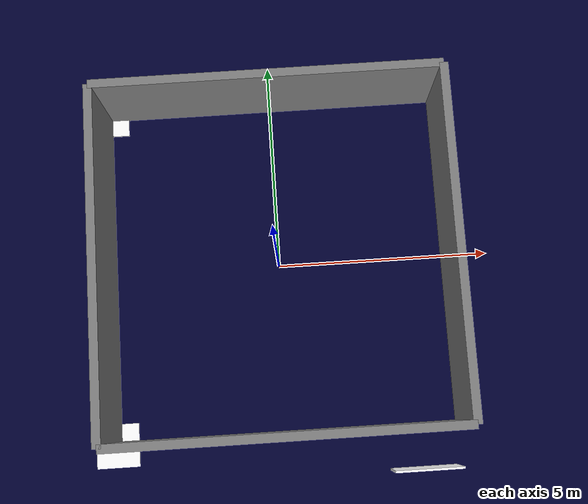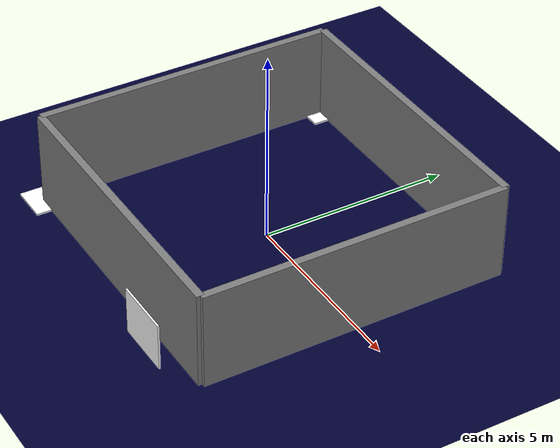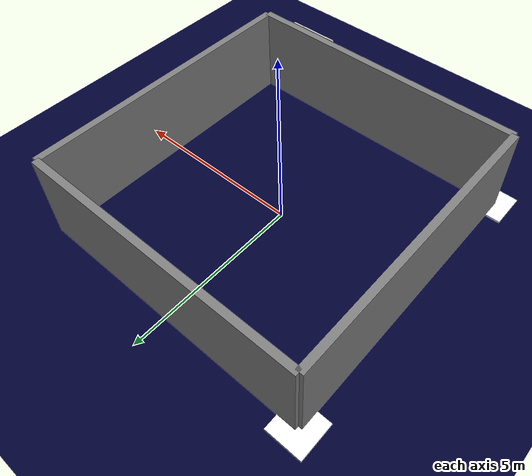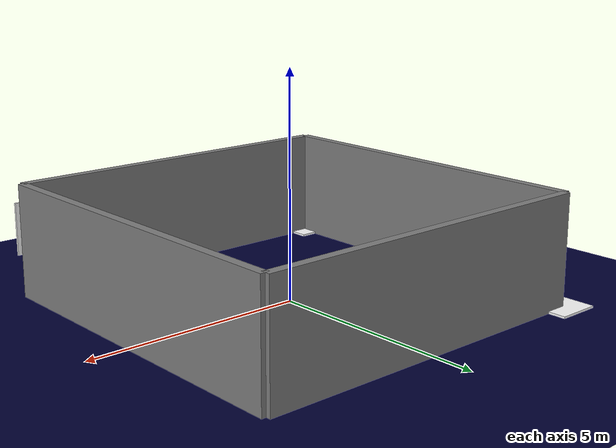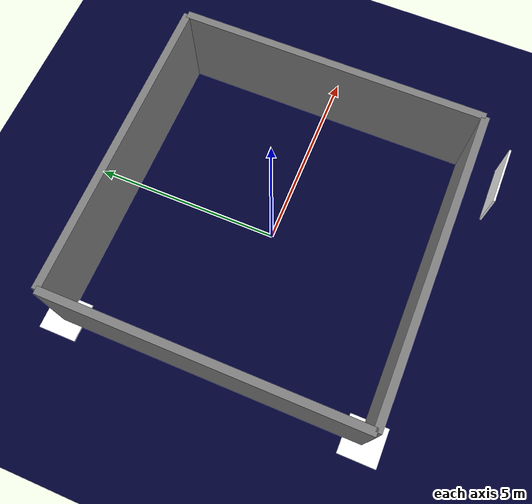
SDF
<sdf version="1.8">
 <world name="tmr_world">
  <physics name="1ms" type="ode">
   <max_step_size>0.001</max_step_size>
   <real_time_factor>1.0</real_time_factor>
  </physics>
  <plugin filename="gz-sim-physics-system" name="gz::sim::systems::Physics"/>
  <plugin filename="gz-sim-user-commands-system" name="gz::sim::systems::UserCommands"/>
  <plugin filename="gz-sim-scene-broadcaster-system" name="gz::sim::systems::SceneBroadcaster"/>
  <light type="directional" name="sun">
   <pose>0 0 10 0 0 0</pose>
   <diffuse>0.8 0.8 0.8 1</diffuse>
   <specular>0.2 0.2 0.2 1</specular>
   <attenuation>
    <range>1000</range>
    <constant>0.9</constant>
    <linear>0.01</linear>
    <quadratic>0.001</quadratic>
   </attenuation>
   <direction>-0.5 0.1 -0.9</direction>
  </light>
  <model name="ground">
   <static>true</static>
   <link name="ground_link">
    <collision name="collision">
     <geometry><plane><normal>0 0 1</normal><size>15 15</size></plane></geometry>
    </collision>
    <visual name="visual">
     <geometry><plane><normal>0 0 1</normal><size>15 15</size></plane></geometry>
     <material>
      <ambient>0.0 0.0 0.2 1</ambient>
      <diffuse>0.0 0.0 0.2 1</diffuse>
      <specular>0.0 0.0 0.2 1</specular>
     </material>
    </visual>
   </link>
  </model>
  <model name="wall">
   <pose>4 0 1.25 0 0 0</pose>
   <link name="wall_link">
    <inertial><mass>10.0</mass></inertial>
    <collision name="collision"><geometry><box><size>0.2 8 2.5</size></box></geometry></collision>
    <visual name="visual">
     <geometry><box><size>0.2 8 2.5</size></box></geometry>
     <material>
      <ambient>0.5 0.5 0.5 1</ambient>
      <diffuse>0.5 0.5 0.5 1</diffuse>
      <specular>0.5 0.5 0.5 1</specular>
     </material>
    </visual>
   </link>
   <static>true</static>
  </model>
  <model name="wall2">
   <pose>-4 0 1.25 0 0 0</pose>
   <link name="wall_link">
    <inertial><mass>10.0</mass></inertial>
    <collision name="collision"><geometry><box><size>0.2 8 2.5</size></box></geometry></collision>
    <visual name="visual">
     <geometry><box><size>0.2 8 2.5</size></box></geometry>
     <material>
      <ambient>0.5 0.5 0.5 1</ambient>
      <diffuse>0.5 0.5 0.5 1</diffuse>
      <specular>0.5 0.5 0.5 1</specular>
     </material>
    </visual>
   </link>
   <static>true</static>
  </model>
  <model name="wall3">
   <pose>0 4 1.25 0 0 1.5708</pose>
   <link name="wall_link">
    <inertial><mass>10.0</mass></inertial>
    <collision name="collision"><geometry><box><size>0.2 8 2.5</size></box></geometry></collision>
    <visual name="visual">
     <geometry><box><size>0.2 8 2.5</size></box></geometry>
     <material>
      <ambient>0.5 0.5 0.5 1</ambient>
      <diffuse>0.5 0.5 0.5 1</diffuse>
      <specular>0.5 0.5 0.5 1</specular>
     </material>
    </visual>
   </link>
   <static>true</static>
  </model>
  <model name="wall4">
   <pose>0 -4 1.25 0 0 1.5708</pose>
   <link name="wall_link">
    <inertial><mass>10.0</mass></inertial>
    <collision name="collision"><geometry><box><size>0.2 8 2.5</size></box></geometry></collision>
    <visual name="visual">
     <geometry><box><size>0.2 8 2.5</size></box></geometry>
     <material>
      <ambient>0.5 0.5 0.5 1</ambient>
      <diffuse>0.5 0.5 0.5 1</diffuse>
      <specular>0.5 0.5 0.5 1</specular>
     </material>
    </visual>
   </link>
   <static>true</static>
  </model>
  <model name="platform start">
   <pose>-4 4 0.025 0 1.5708 0</pose>
   <link name="platform_link">
    <inertial><mass>3.0</mass></inertial>
    <collision name="collision"><geometry><box><size>0.05 1 1</size></box></geometry></collision>
    <visual name="visual">
     <geometry><box><size>0.05 1 1</size></box></geometry>
     <material><ambient>1 1 1 1</ambient><diffuse>1 1 1 1</diffuse><specular>1 1 1 1</specular></material>
    </visual>
   </link>
   <static>true</static>
  </model>
  <model name="platform end">
   <pose>-4 -4 0.025 0 1.5708 0</pose>
   <link name="platform_link">
    <inertial><mass>3.0</mass></inertial>
    <collision name="collision"><geometry><box><size>0.05 1 1</size></box></geometry></collision>
    <visual name="visual">
     <geometry><box><size>0.05 1 1</size></box></geometry>
     <material><ambient>1 1 1 1</ambient><diffuse>1 1 1 1</diffuse><specular>1 1 1 1</specular></material>
    </visual>
   </link>
   <static>true</static>
  </model>
  <model name="whiteboard">
   <pose>3 -4.9 1.25 0 0 1.5708</pose>
   <link name="whiteboard_link">
    <inertial><mass>2.0</mass></inertial>
    <collision name="collision"><geometry><box><size>0.05 1.5 1.2</size></box></geometry></collision>
    <visual name="visual">
     <geometry><box><size>0.05 1.5 1.2</size></box></geometry>
     <material><ambient>1 1 1 1</ambient><diffuse>1 1 1 1</diffuse><specular>1 1 1 1</specular></material>
    </visual>
   </link>
   <static>true</static>
  </model>
 </world>
</sdf>
